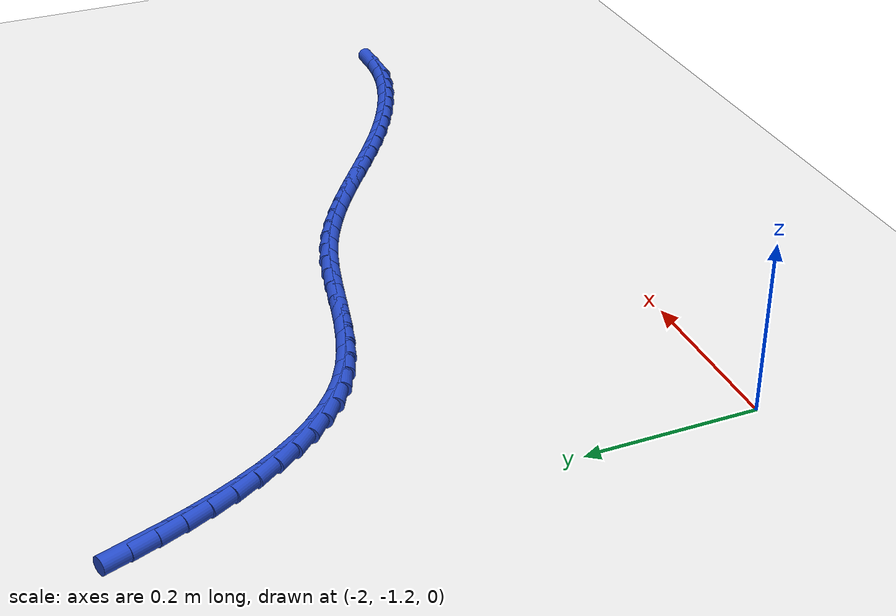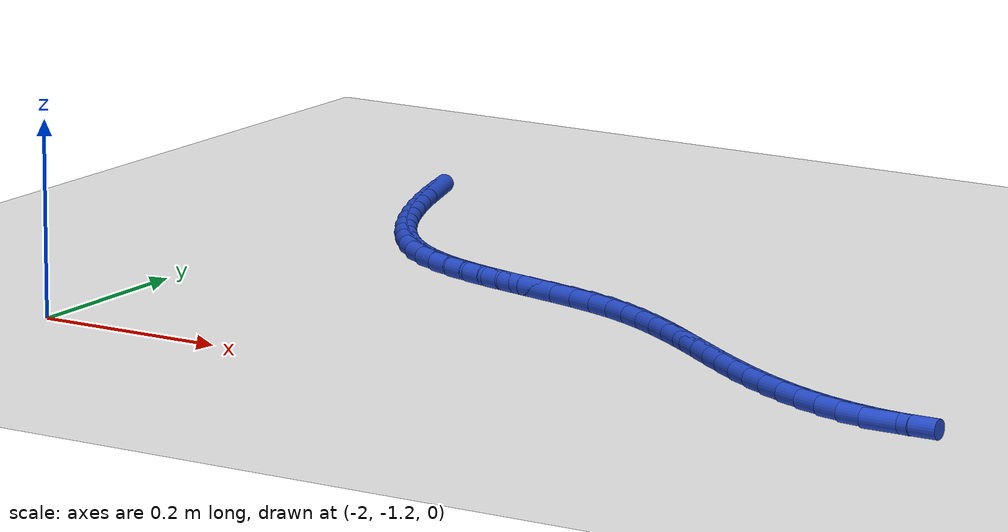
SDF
<sdf version="1.6">
 <world name="default">
  <model name="ground_plane">
   <static>1</static>
   <link name="link">
    <collision name="collision">
     <geometry><plane><normal>0 0 1</normal><size>100 100</size></plane></geometry>
     <surface><friction><ode><mu>100</mu><mu2>50</mu2></ode></friction></surface>
    </collision>
    <visual name="visual">
     <cast_shadows>0</cast_shadows>
     <geometry><plane><normal>0 0 1</normal><size>100 100</size></plane></geometry>
     <material>
      <script><uri>file://media/materials/scripts/gazebo.material</uri><name>Gazebo/WhiteGlow</name></script>
     </material>
    </visual>
   </link>
  </model>
  <model name="line">
   <link name="link_140">
    <pose>-1.969001935746869 -0.5564815790947628 0.01 0 1.57 -1.2457137619730718</pose>
    <collision name="collision">
     <geometry><cylinder><radius>0.01</radius><length>0.08</length></cylinder></geometry>
    </collision>
    <visual name="visual">
     <material>
      <script><name>Gazebo/Blue</name><uri>file://media/materials/scripts/gazebo.material</uri></script>
     </material>
     <geometry><cylinder><radius>0.01</radius><length>0.08</length></cylinder></geometry>
    </visual>
   </link>
   <link name="link_141">
    <pose>-1.959592551722807 -0.5843993113279495 0.01 0 1.57 -1.214320206307619</pose>
    <collision name="collision">
     <geometry><cylinder><radius>0.01</radius><length>0.08</length></cylinder></geometry>
    </collision>
    <visual name="visual">
     <material>
      <script><name>Gazebo/Blue</name><uri>file://media/materials/scripts/gazebo.material</uri></script>
     </material>
     <geometry><cylinder><radius>0.01</radius><length>0.08</length></cylinder></geometry>
    </visual>
   </link>
   <link name="link_142">
    <pose>-1.9492412271886992 -0.6121966819236919 0.01 0 1.57 -1.1777500423077247</pose>
    <collision name="collision">
     <geometry><cylinder><radius>0.01</radius><length>0.08</length></cylinder></geometry>
    </collision>
    <visual name="visual">
     <material>
      <script><name>Gazebo/Blue</name><uri>file://media/materials/scripts/gazebo.material</uri></script>
     </material>
     <geometry><cylinder><radius>0.01</radius><length>0.08</length></cylinder></geometry>
    </visual>
   </link>
   <link name="link_143">
    <pose>-1.9378720198089927 -0.639617444473952 0.01 0 1.57 -1.1353343986133293</pose>
    <collision name="collision">
     <geometry><cylinder><radius>0.01</radius><length>0.08</length></cylinder></geometry>
    </collision>
    <visual name="visual">
     <material>
      <script><name>Gazebo/Blue</name><uri>file://media/materials/scripts/gazebo.material</uri></script>
     </material>
     <geometry><cylinder><radius>0.01</radius><length>0.08</length></cylinder></geometry>
    </visual>
   </link>
   <link name="link_144">
    <pose>-1.9254089872481366 -0.666405352570692 0.01 0 1.57 -1.086262495747468</pose>
    <collision name="collision">
     <geometry><cylinder><radius>0.01</radius><length>0.08</length></cylinder></geometry>
    </collision>
    <visual name="visual">
     <material>
      <script><name>Gazebo/Blue</name><uri>file://media/materials/scripts/gazebo.material</uri></script>
     </material>
     <geometry><cylinder><radius>0.01</radius><length>0.08</length></cylinder></geometry>
    </visual>
   </link>
   <link name="link_145">
    <pose>-1.911776187170578 -0.6923041598058738 0.01 0 1.57 -1.0295919838617977</pose>
    <collision name="collision">
     <geometry><cylinder><radius>0.01</radius><length>0.08</length></cylinder></geometry>
    </collision>
    <visual name="visual">
     <material>
      <script><name>Gazebo/Blue</name><uri>file://media/materials/scripts/gazebo.material</uri></script>
     </material>
     <geometry><cylinder><radius>0.01</radius><length>0.08</length></cylinder></geometry>
    </visual>
   </link>
   <link name="link_146">
    <pose>-1.8968976772407649 -0.7170576197714592 0.01 0 1.57 -0.9642829619869212</pose>
    <collision name="collision">
     <geometry><cylinder><radius>0.01</radius><length>0.08</length></cylinder></geometry>
    </collision>
    <visual name="visual">
     <material>
      <script><name>Gazebo/Blue</name><uri>file://media/materials/scripts/gazebo.material</uri></script>
     </material>
     <geometry><cylinder><radius>0.01</radius><length>0.08</length></cylinder></geometry>
    </visual>
   </link>
   <link name="link_147">
    <pose>-1.880697515123144 -0.740409486059411 0.01 0 1.57 -0.8892754898691357</pose>
    <collision name="collision">
     <geometry><cylinder><radius>0.01</radius><length>0.08</length></cylinder></geometry>
    </collision>
    <visual name="visual">
     <material>
      <script><name>Gazebo/Blue</name><uri>file://media/materials/scripts/gazebo.material</uri></script>
     </material>
     <geometry><cylinder><radius>0.01</radius><length>0.08</length></cylinder></geometry>
    </visual>
   </link>
   <link name="link_148">
    <pose>-1.8630997584821642 -0.7621035122616897 0.01 0 1.57 -0.8036361336653858</pose>
    <collision name="collision">
     <geometry><cylinder><radius>0.01</radius><length>0.08</length></cylinder></geometry>
    </collision>
    <visual name="visual">
     <material>
      <script><name>Gazebo/Blue</name><uri>file://media/materials/scripts/gazebo.material</uri></script>
     </material>
     <geometry><cylinder><radius>0.01</radius><length>0.08</length></cylinder></geometry>
    </visual>
   </link>
   <link name="link_149">
    <pose>-1.8440284649822742 -0.7818834519702588 0.01 0 1.57 -0.706796742413469</pose>
    <collision name="collision">
     <geometry><cylinder><radius>0.01</radius><length>0.08</length></cylinder></geometry>
    </collision>
    <visual name="visual">
     <material>
      <script><name>Gazebo/Blue</name><uri>file://media/materials/scripts/gazebo.material</uri></script>
     </material>
     <geometry><cylinder><radius>0.01</radius><length>0.08</length></cylinder></geometry>
    </visual>
   </link>
   <link name="link_150">
    <pose>-1.8234076922879192 -0.7994930587770788 0.01 0 1.57 -0.5988851631076626</pose>
    <collision name="collision">
     <geometry><cylinder><radius>0.01</radius><length>0.08</length></cylinder></geometry>
    </collision>
    <visual name="visual">
     <material>
      <script><name>Gazebo/Blue</name><uri>file://media/materials/scripts/gazebo.material</uri></script>
     </material>
     <geometry><cylinder><radius>0.01</radius><length>0.08</length></cylinder></geometry>
    </visual>
   </link>
   <link name="link_151">
    <pose>-1.801161509992557 -0.8146761099230229 0.01 0 1.57 -0.48688744629694564</pose>
    <collision name="collision">
     <geometry><cylinder><radius>0.01</radius><length>0.08</length></cylinder></geometry>
    </collision>
    <visual name="visual">
     <material>
      <script><name>Gazebo/Blue</name><uri>file://media/materials/scripts/gazebo.material</uri></script>
     </material>
     <geometry><cylinder><radius>0.01</radius><length>0.08</length></cylinder></geometry>
    </visual>
   </link>
   <link name="link_152">
    <pose>-1.7772846387019041 -0.827316446219467 0.01 0 1.57 -0.392103172799685</pose>
    <collision name="collision">
     <geometry><cylinder><radius>0.01</radius><length>0.08</length></cylinder></geometry>
    </collision>
    <visual name="visual">
     <material>
      <script><name>Gazebo/Blue</name><uri>file://media/materials/scripts/gazebo.material</uri></script>
     </material>
     <geometry><cylinder><radius>0.01</radius><length>0.08</length></cylinder></geometry>
    </visual>
   </link>
   <link name="link_153">
    <pose>-1.7520090685388958 -0.83776828837314 0.01 0 1.57 -0.31897546764901613</pose>
    <collision name="collision">
     <geometry><cylinder><radius>0.01</radius><length>0.08</length></cylinder></geometry>
    </collision>
    <visual name="visual">
     <material>
      <script><name>Gazebo/Blue</name><uri>file://media/materials/scripts/gazebo.material</uri></script>
     </material>
     <geometry><cylinder><radius>0.01</radius><length>0.08</length></cylinder></geometry>
    </visual>
   </link>
   <link name="link_154">
    <pose>-1.725616543296873 -0.84648449229074 0.01 0 1.57 -0.2665144061350039</pose>
    <collision name="collision">
     <geometry><cylinder><radius>0.01</radius><length>0.08</length></cylinder></geometry>
    </collision>
    <visual name="visual">
     <material>
      <script><name>Gazebo/Blue</name><uri>file://media/materials/scripts/gazebo.material</uri></script>
     </material>
     <geometry><cylinder><radius>0.01</radius><length>0.08</length></cylinder></geometry>
    </visual>
   </link>
   <link name="link_155">
    <pose>-1.6983888067691744 -0.8539179138789642 0.01 0 1.57 -0.23336580737188972</pose>
    <collision name="collision">
     <geometry><cylinder><radius>0.01</radius><length>0.08</length></cylinder></geometry>
    </collision>
    <visual name="visual">
     <material>
      <script><name>Gazebo/Blue</name><uri>file://media/materials/scripts/gazebo.material</uri></script>
     </material>
     <geometry><cylinder><radius>0.01</radius><length>0.08</length></cylinder></geometry>
    </visual>
   </link>
   <link name="link_156">
    <pose>-1.6706076027491408 -0.8605214090445096 0.01 0 1.57 -0.21841214673362713</pose>
    <collision name="collision">
     <geometry><cylinder><radius>0.01</radius><length>0.08</length></cylinder></geometry>
    </collision>
    <visual name="visual">
     <material>
      <script><name>Gazebo/Blue</name><uri>file://media/materials/scripts/gazebo.material</uri></script>
     </material>
     <geometry><cylinder><radius>0.01</radius><length>0.08</length></cylinder></geometry>
    </visual>
   </link>
   <link name="link_157">
    <pose>-1.6425546750301117 -0.8667478336940734 0.01 0 1.57 -0.22106176256265112</pose>
    <collision name="collision">
     <geometry><cylinder><radius>0.01</radius><length>0.08</length></cylinder></geometry>
    </collision>
    <visual name="visual">
     <material>
      <script><name>Gazebo/Blue</name><uri>file://media/materials/scripts/gazebo.material</uri></script>
     </material>
     <geometry><cylinder><radius>0.01</radius><length>0.08</length></cylinder></geometry>
    </visual>
   </link>
   <link name="link_158">
    <pose>-1.6145117674054261 -0.8730500437343531 0.01 0 1.57 -0.2413487148081885</pose>
    <collision name="collision">
     <geometry><cylinder><radius>0.01</radius><length>0.08</length></cylinder></geometry>
    </collision>
    <visual name="visual">
     <material>
      <script><name>Gazebo/Blue</name><uri>file://media/materials/scripts/gazebo.material</uri></script>
     </material>
     <geometry><cylinder><radius>0.01</radius><length>0.08</length></cylinder></geometry>
    </visual>
   </link>
   <link name="link_159">
    <pose>-1.5867606236684244 -0.8798808950720461 0.01 0 1.57 -0.27990829732948475</pose>
    <collision name="collision">
     <geometry><cylinder><radius>0.01</radius><length>0.08</length></cylinder></geometry>
    </collision>
    <visual name="visual">
     <material>
      <script><name>Gazebo/Blue</name><uri>file://media/materials/scripts/gazebo.material</uri></script>
     </material>
     <geometry><cylinder><radius>0.01</radius><length>0.08</length></cylinder></geometry>
    </visual>
   </link>
   <link name="link_160">
    <pose>-1.5595829876124458 -0.88769324361385 0.01 0 1.57 -0.337768871791101</pose>
    <collision name="collision">
     <geometry><cylinder><radius>0.01</radius><length>0.08</length></cylinder></geometry>
    </collision>
    <visual name="visual">
     <material>
      <script><name>Gazebo/Blue</name><uri>file://media/materials/scripts/gazebo.material</uri></script>
     </material>
     <geometry><cylinder><radius>0.01</radius><length>0.08</length></cylinder></geometry>
    </visual>
   </link>
   <link name="link_161">
    <pose>-1.5332597705747784 -0.8969387088270335 0.01 0 1.57 -0.4072821671014902</pose>
    <collision name="collision">
     <geometry><cylinder><radius>0.01</radius><length>0.08</length></cylinder></geometry>
    </collision>
    <visual name="visual">
     <material>
      <script><name>Gazebo/Blue</name><uri>file://media/materials/scripts/gazebo.material</uri></script>
     </material>
     <geometry><cylinder><radius>0.01</radius><length>0.08</length></cylinder></geometry>
    </visual>
   </link>
   <link name="link_162">
    <pose>-1.5079341195520632 -0.90786429005223 0.01 0 1.57 -0.46964449504422495</pose>
    <collision name="collision">
     <geometry><cylinder><radius>0.01</radius><length>0.08</length></cylinder></geometry>
    </collision>
    <visual name="visual">
     <material>
      <script><name>Gazebo/Blue</name><uri>file://media/materials/scripts/gazebo.material</uri></script>
     </material>
     <geometry><cylinder><radius>0.01</radius><length>0.08</length></cylinder></geometry>
    </visual>
   </link>
   <link name="link_163">
    <pose>-1.48345894446307 -0.9202859001286643 0.01 0 1.57 -0.5214890687639869</pose>
    <collision name="collision">
     <geometry><cylinder><radius>0.01</radius><length>0.08</length></cylinder></geometry>
    </collision>
    <visual name="visual">
     <material>
      <script><name>Gazebo/Blue</name><uri>file://media/materials/scripts/gazebo.material</uri></script>
     </material>
     <geometry><cylinder><radius>0.01</radius><length>0.08</length></cylinder></geometry>
    </visual>
   </link>
   <link name="link_164">
    <pose>-1.4596504093715295 -0.9339648736100953 0.01 0 1.57 -0.5622622654933205</pose>
    <collision name="collision">
     <geometry><cylinder><radius>0.01</radius><length>0.08</length></cylinder></geometry>
    </collision>
    <visual name="visual">
     <material>
      <script><name>Gazebo/Blue</name><uri>file://media/materials/scripts/gazebo.material</uri></script>
     </material>
     <geometry><cylinder><radius>0.01</radius><length>0.08</length></cylinder></geometry>
    </visual>
   </link>
   <link name="link_165">
    <pose>-1.436324678341174 -0.9486625450502818 0.01 0 1.57 -0.5917970912980626</pose>
    <collision name="collision">
     <geometry><cylinder><radius>0.01</radius><length>0.08</length></cylinder></geometry>
    </collision>
    <visual name="visual">
     <material>
      <script><name>Gazebo/Blue</name><uri>file://media/materials/scripts/gazebo.material</uri></script>
     </material>
     <geometry><cylinder><radius>0.01</radius><length>0.08</length></cylinder></geometry>
    </visual>
   </link>
   <link name="link_166">
    <pose>-1.4132979154357348 -0.9641402490029821 0.01 0 1.57 -0.6101671221406721</pose>
    <collision name="collision">
     <geometry><cylinder><radius>0.01</radius><length>0.08</length></cylinder></geometry>
    </collision>
    <visual name="visual">
     <material>
      <script><name>Gazebo/Blue</name><uri>file://media/materials/scripts/gazebo.material</uri></script>
     </material>
     <geometry><cylinder><radius>0.01</radius><length>0.08</length></cylinder></geometry>
    </visual>
   </link>
   <link name="link_167">
    <pose>-1.3903862847189443 -0.9801593200219554 0.01 0 1.57 -0.6175717977238663</pose>
    <collision name="collision">
     <geometry><cylinder><radius>0.01</radius><length>0.08</length></cylinder></geometry>
    </collision>
    <visual name="visual">
     <material>
      <script><name>Gazebo/Blue</name><uri>file://media/materials/scripts/gazebo.material</uri></script>
     </material>
     <geometry><cylinder><radius>0.01</radius><length>0.08</length></cylinder></geometry>
    </visual>
   </link>
   <link name="link_168">
    <pose>-1.3674059502545333 -0.9964810926609599 0.01 0 1.57 -0.6142644656040674</pose>
    <collision name="collision">
     <geometry><cylinder><radius>0.01</radius><length>0.08</length></cylinder></geometry>
    </collision>
    <visual name="visual">
     <material>
      <script><name>Gazebo/Blue</name><uri>file://media/materials/scripts/gazebo.material</uri></script>
     </material>
     <geometry><cylinder><radius>0.01</radius><length>0.08</length></cylinder></geometry>
    </visual>
   </link>
   <link name="link_169">
    <pose>-1.3441730761062343 -1.0128669014737544 0.01 0 1.57 -0.6005228593501502</pose>
    <collision name="collision">
     <geometry><cylinder><radius>0.01</radius><length>0.08</length></cylinder></geometry>
    </collision>
    <visual name="visual">
     <material>
      <script><name>Gazebo/Blue</name><uri>file://media/materials/scripts/gazebo.material</uri></script>
     </material>
     <geometry><cylinder><radius>0.01</radius><length>0.08</length></cylinder></geometry>
    </visual>
   </link>
   <link name="link_170">
    <pose>-1.3205038263377784 -1.029078081014098 0.01 0 1.57 -0.5766569190652246</pose>
    <collision name="collision">
     <geometry><cylinder><radius>0.01</radius><length>0.08</length></cylinder></geometry>
    </collision>
    <visual name="visual">
     <material>
      <script><name>Gazebo/Blue</name><uri>file://media/materials/scripts/gazebo.material</uri></script>
     </material>
     <geometry><cylinder><radius>0.01</radius><length>0.08</length></cylinder></geometry>
    </visual>
   </link>
   <link name="link_171">
    <pose>-1.2962143650128986 -1.0448759658357487 0.01 0 1.57 -0.5430576567676112</pose>
    <collision name="collision">
     <geometry><cylinder><radius>0.01</radius><length>0.08</length></cylinder></geometry>
    </collision>
    <visual name="visual">
     <material>
      <script><name>Gazebo/Blue</name><uri>file://media/materials/scripts/gazebo.material</uri></script>
     </material>
     <geometry><cylinder><radius>0.01</radius><length>0.08</length></cylinder></geometry>
    </visual>
   </link>
   <link name="link_172">
    <pose>-1.2711216010960567 -1.0600217972773796 0.01 0 1.57 -0.5015934375677452</pose>
    <collision name="collision">
     <geometry><cylinder><radius>0.01</radius><length>0.08</length></cylinder></geometry>
    </collision>
    <visual name="visual">
     <material>
      <script><name>Gazebo/Blue</name><uri>file://media/materials/scripts/gazebo.material</uri></script>
     </material>
     <geometry><cylinder><radius>0.01</radius><length>0.08</length></cylinder></geometry>
    </visual>
   </link>
   <link name="link_173">
    <pose>-1.245151352036273 -1.0742631881318394 0.01 0 1.57 -0.4548297387252629</pose>
    <collision name="collision">
     <geometry><cylinder><radius>0.01</radius><length>0.08</length></cylinder></geometry>
    </collision>
    <visual name="visual">
     <material>
      <script><name>Gazebo/Blue</name><uri>file://media/materials/scripts/gazebo.material</uri></script>
     </material>
     <geometry><cylinder><radius>0.01</radius><length>0.08</length></cylinder></geometry>
    </visual>
   </link>
   <link name="link_174">
    <pose>-1.2184518877101065 -1.087319914030213 0.01 0 1.57 -0.4020510435416705</pose>
    <collision name="collision">
     <geometry><cylinder><radius>0.01</radius><length>0.08</length></cylinder></geometry>
    </collision>
    <visual name="visual">
     <material>
      <script><name>Gazebo/Blue</name><uri>file://media/materials/scripts/gazebo.material</uri></script>
     </material>
     <geometry><cylinder><radius>0.01</radius><length>0.08</length></cylinder></geometry>
    </visual>
   </link>
   <link name="link_175">
    <pose>-1.1911986317931567 -1.098908352642479 0.01 0 1.57 -0.3419994288203906</pose>
    <collision name="collision">
     <geometry><cylinder><radius>0.01</radius><length>0.08</length></cylinder></geometry>
    </collision>
    <visual name="visual">
     <material>
      <script><name>Gazebo/Blue</name><uri>file://media/materials/scripts/gazebo.material</uri></script>
     </material>
     <geometry><cylinder><radius>0.01</radius><length>0.08</length></cylinder></geometry>
    </visual>
   </link>
   <link name="link_176">
    <pose>-1.163567007961024 -1.108744881638617 0.01 0 1.57 -0.27325248292621573</pose>
    <collision name="collision">
     <geometry><cylinder><radius>0.01</radius><length>0.08</length></cylinder></geometry>
    </collision>
    <visual name="visual">
     <material>
      <script><name>Gazebo/Blue</name><uri>file://media/materials/scripts/gazebo.material</uri></script>
     </material>
     <geometry><cylinder><radius>0.01</radius><length>0.08</length></cylinder></geometry>
    </visual>
   </link>
   <link name="link_177">
    <pose>-1.1357324398893076 -1.1165458786886062 0.01 0 1.57 -0.1942678152546949</pose>
    <collision name="collision">
     <geometry><cylinder><radius>0.01</radius><length>0.08</length></cylinder></geometry>
    </collision>
    <visual name="visual">
     <material>
      <script><name>Gazebo/Blue</name><uri>file://media/materials/scripts/gazebo.material</uri></script>
     </material>
     <geometry><cylinder><radius>0.01</radius><length>0.08</length></cylinder></geometry>
    </visual>
   </link>
   <link name="link_178">
    <pose>-1.1078703512536083 -1.122027721462425 0.01 0 1.57 -0.10351290399911292</pose>
    <collision name="collision">
     <geometry><cylinder><radius>0.01</radius><length>0.08</length></cylinder></geometry>
    </collision>
    <visual name="visual">
     <material>
      <script><name>Gazebo/Blue</name><uri>file://media/materials/scripts/gazebo.material</uri></script>
     </material>
     <geometry><cylinder><radius>0.01</radius><length>0.08</length></cylinder></geometry>
    </visual>
   </link>
   <link name="link_179">
    <pose>-1.0801561657295262 -1.1249067876300538 0.01 0 1.57 0.0002677085986420645</pose>
    <collision name="collision">
     <geometry><cylinder><radius>0.01</radius><length>0.08</length></cylinder></geometry>
    </collision>
    <visual name="visual">
     <material>
      <script><name>Gazebo/Blue</name><uri>file://media/materials/scripts/gazebo.material</uri></script>
     </material>
     <geometry><cylinder><radius>0.01</radius><length>0.08</length></cylinder></geometry>
    </visual>
   </link>
  </model>
 </world>
</sdf>
